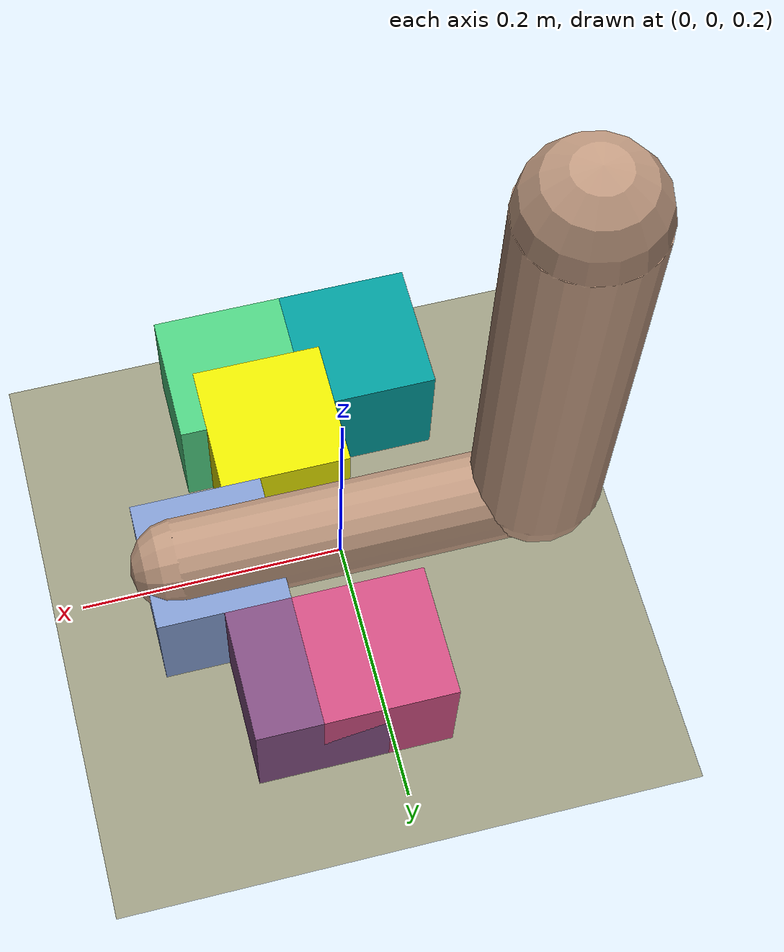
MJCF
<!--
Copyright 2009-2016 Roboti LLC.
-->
<mujoco model="arm_claw (v1.31)">
	<compiler 	inertiafromgeom="auto"
				angle="radian"/>

	<size 	nuser_jnt="1"
			nuser_geom="1"/>

	<option	timestep="0.001"
			gravity="0 0 -9.8"
			viscosity="0"
			iterations="20"/>

	<asset>
		<material name="MatGnd" specular=".3" shininess=".3" reflectance="0.0" rgba=".5 .55 .5 1"/>
	</asset>

	<default>
		<joint limited="true" damping="1" stiffness="0" armature=".1" user="0"/>
		<geom solref="0.008 1" solimp="0.95 0.95 0.01" margin="0.001" user="0"/>
		<motor ctrllimited="true" ctrlrange="-1 1"/>
		<position ctrllimited="true"/>

		<default class='0'>
			<geom friction="1 0.005 0.001" rgba=".75 .6 .5 1" contype="1" conaffinity="0"/>
		</default>

		<default class='1'>
			<geom friction="1 0.005 0.001" rgba=".7 .6 .55 1" contype="1" conaffinity="0"/>
		</default>

		<default class='arm'>
			<joint damping="5"/>
		</default>
	</default>

	<worldbody>
		<light directional="true" cutoff="40" exponent="10" diffuse=".4 .4 .4" specular=".7 .7 .7" pos="0 0 1.5" dir="0 0 -1"/>
		<geom name="tableTop" material="MatGnd" type="plane" pos="0.15 0 0.15" size="0.8 0.8 0.5" rgba=".6 .6 .5 1" contype="1" conaffinity="1"/>
		<camera name="camera_1" mode= "fixed" pos="0.1 -0.8 1.5" quat="0.976 0.271 0.0 0.0" />
		<camera name="camera_2" mode= "fixed" pos="0.1 0.8 1.5" quat="0.0 0.0 0.271 0.976" />

		<!--  ================= ARM ================= /-->
		<body name="upperarm" pos="-0.15 0 0.6">
			<geom class="0" type="capsule" fromto="0 0 0 0 0 -0.345" size="0.05"/>
			<joint class='arm' name="s_abduction" type="hinge" pos="0 0 0" limited='true' axis="1 0 0" range="-1.57 .7" user="001"/>
			<joint class='arm' name="s_flexion" type="hinge" pos="0 0 0" limited='true' axis="0 -1 0" range="-.85 1.57" user="002"/>
			<joint class='arm' name="s_rotation" type="hinge" pos="0 0 0" limited='true' axis="0 0 1" range="-.85 .85" user="003"/>

			<body name="forearm" pos="0 0 -0.36">
				<geom class="0" type="capsule" fromto="0 0 0 0.275 0 0" size="0.035"/>
				<joint class='arm' name="e_flexion" type="hinge" pos="0 0 0" limited='true' axis="0 -1 0" range="-1.5 1.05" user="004"/>
				<site name="end_effector" pos="0.275 0 0" size="0.001"/>

				<!--  ================= Palm ================= /-->

			</body>

		</body>

		<!--  ================= OBJECT ================= /-->
		<body name="a_object" pos="0.2 0.1 0.2">
			<geom density="2e3" type="box" name="a_box" pos="-0.1 -0.1 0" size="0.05 0.05 0.05" rgba="0.5 0.6 0.8 1" user="1" contype="0" conaffinity="1"/>
			<joint name="a_obj" type="free" limited='false' damping="0" armature="0"/>
		</body>
		<body name="b_object" pos="0.1 -0.2 0.2">
			<geom density="2e3" type="box" name="b_box" pos="-0.05 0.05 0" size="0.05 0.05 0.05" rgba="0.3 0.8 0.5 1" user="1" contype="1" conaffinity="1"/>
			<joint name="b_obj" type="free" limited='false' damping="0" armature="0"/>
		</body>
		<body name="c_object" pos="0.05 0.05 0.2">
			<geom density="2e3" type="box" name="c_box" pos="-0.05 0.05 0" size="0.05 0.05 0.05" rgba="0.8 0.3 0.5 1" user="1" contype="1" conaffinity="1"/>
			<joint name="c_obj" type="free" limited='false' damping="0" armature="0"/>
		</body>
		<body name="d_object" pos="0.1 0.05 0.2">
			<geom density="2e3" type="box" name="d_box" pos="-0.05 0.05 0" size="0.05 0.05 0.05" rgba="0.5 0.3 0.5 1" user="1" contype="1" conaffinity="1"/>
			<joint name="d_obj" type="free" limited='false' damping="0" armature="0"/>
		</body>
		<body name="e_object" pos="0.08 -0.15 0.2">
			<geom density="2e3" type="box" name="e_box" pos="-0.05 0.05 0" size="0.05 0.05 0.05" rgba="0.9 0.9 0.0 1" user="1" contype="1" conaffinity="1"/>
			<joint name="e_obj" type="free" limited='false' damping="0" armature="0"/>
		</body>
		<body name="f_object" pos="0.05 -0.05 0.2">
			<geom density="2e3" type="box" name="f_box" pos="-0.1 -0.1 0" size="0.05 0.05 0.05" rgba="0.0 0.6 0.6 1" user="1" contype="1" conaffinity="1"/>
			<joint name="f_obj" type="free" limited='false' damping="0" armature="0"/>
		</body>

	</worldbody>

	<actuator>

		<!--  ================= Torque actuators ================= /-->
		<motor joint='s_abduction' 	name='As_abduction' gear="100"/>
		<motor joint='s_flexion' 	name='As_flexion' 	gear="100"/>
		<motor joint='s_rotation' 	name='As_rotation' 	gear="100"/>
		<motor joint='e_flexion' 	name='Ae_flexion' 	gear="70"/>

		<!--  ================= Position actuators ================= /-->

	</actuator>

</mujoco>
